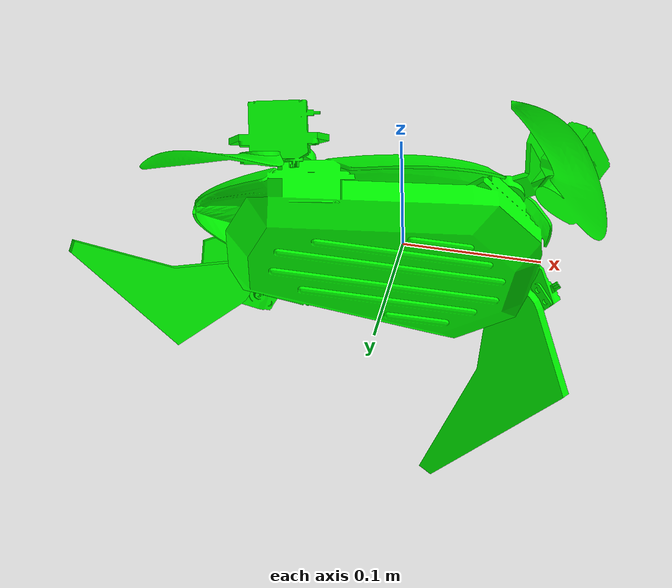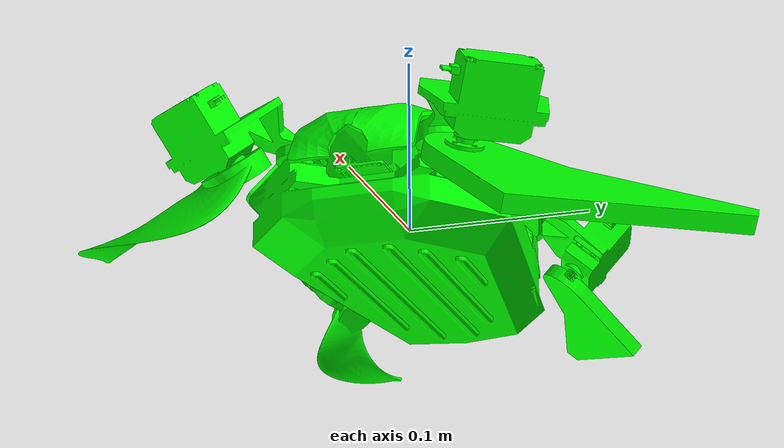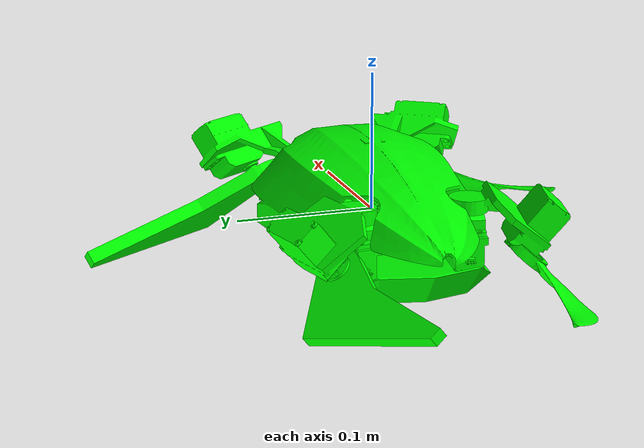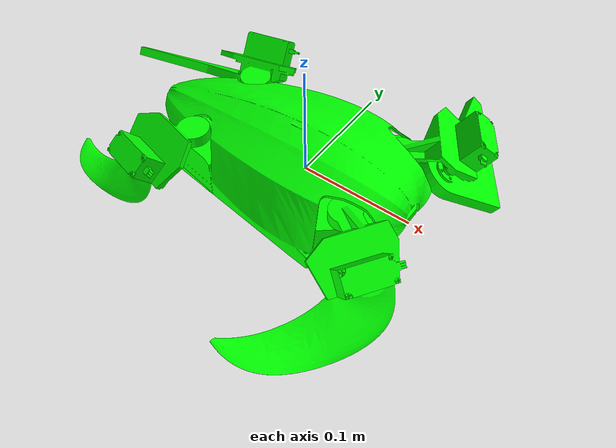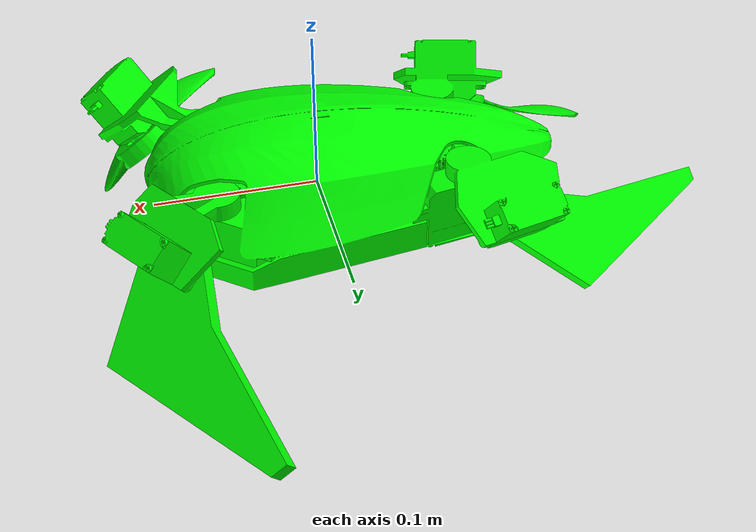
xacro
<?xml version="1.0"?>
<!-- Turtle on land URDF file-->
<robot name="URDF1" xmlns:xacro="http://www.ros.org/wiki/xacro">

  <!-- Import turtlebot ros2_control description -->
  <xacro:include filename="$(find turtle_on_land_demo)/src/ros2_control.xacro" />

  <!-- Import turtle gazebo lidar description -->
  <xacro:include filename="$(find turtle_on_land_demo)/gazebo/turtle.gazebo.xacro" />

  <!--Link1; Turtle Shell bottom-->
  <link name="base_footprint">
  <!--Visual description of link-->
      <visual>
      <!--Description of origin rotational and position coordinates -->
          <origin xyz="0 0 0" rpy="0 0 0" />
          <geometry>
          <!--Modeled as a box of dimensions; Length, width, height-->
            <box size="0.001 0.001 0.001" />
          </geometry>
      </visual>
  </link>
  <!--Link parameteres are repeated for each link-->

  <!--Joint1; fixed joint between Link1 and 2 -->
  <!--Describes movement of the joint in relation to the two links , fixed, revolute and rotational -->
  <joint name="base_footprint_joint" type="fixed">
  <!--Description of joint origin rotational and position coordinates-->
      <origin xyz="0 0 0.001" rpy="0 0 0" />
      <!--Parent link defining parent frame-->
      <parent link="base_footprint"/>
      <!--Child link defining child frame-->
      <child link="base_link" />
      <dynamics damping="0.1" friction="0.01"/>
  </joint>
  <!--Joint parameters are the same throughout for each link connection-->

  <!--Link2;Turtle Shell Top-->
  <link
    name="base_link">
    <!--Interial properties-->
    <inertial>
      <origin
        xyz="-0.0076873 -3.8825E-05 -0.0022692"
        rpy="0 0 0" />
        <!--Mass parameter for link-->
      <mass
        value="10.97301" />
        <!--Inertial properties-->
      <inertia
        ixx="0.00031924"
        ixy="2.9938E-07"
        ixz="-1.8594E-05"
        iyy="0.00078244"
        iyz="4.8628E-08"
        izz="0.0010267" />
    </inertial>
    <!--Origin description-->
    <visual>
      <origin
        xyz="0 0 0"
        rpy="0 0 0" />
        <!--Filepath to STL visual Mesh file-->
      <geometry>
        <mesh filename="package://turtle_on_land_demo/meshes/visual/base_link.STL"/>
      </geometry>
      <material
        name="">
        <!--Link Color-->
        <color
          rgba="0 1 0 1" />
      </material>
    </visual>
    <!--Collision parameter for Link-->
    <collision>
      <origin
        xyz="0 0 0"
        rpy="0 0 0" />
        <!--Filepath to STL visual Mesh file-->
      <geometry>
        <mesh
          filename="package://turtle_on_land_demo/meshes/visual/base_link.STL" />
      </geometry>
    </collision>
  </link>

  <!--Link3; Front right shoulder-->
  <link
    name="Front_right1">
    <!--Interial properties of Link3-->
    <inertial>
      <origin
        xyz="0.0080805 0.044922 -0.0032131"
        rpy="0 0 0" />
        <!--Mass Parameter of Link3-->
      <mass
        value="0.047842" />
      <inertia
        ixx="1.0755E-05"
        ixy="-1.0673E-06"
        ixz="-7.773E-08"
        iyy="1.1517E-05"
        iyz="-1.8519E-06"
        izz="1.5396E-05" />
    </inertial>
    <visual>
      <origin
        xyz="0 0 0"
        rpy="0 0 0" />
      <geometry>
        <mesh
          filename="package://turtle_on_land_demo/meshes/visual/Front_right1.STL" />
      </geometry>
      <material
        name="">
        <color
          rgba="0 1 0 1" />
      </material>
    </visual>
    <collision>
      <origin
        xyz="0 0 0"
        rpy="0 0 0" />
      <geometry>
        <mesh
          filename="package://turtle_on_land_demo/meshes/visual/Front_right1.STL" />
      </geometry>
    </collision>
  </link>

  <!--Joint2;Revolute joint between base link and link3-->
  <joint
    name="Front_right1_joint"
    type="revolute">
    <origin
      xyz="0.065905 -0.038461 0.029"
      rpy="0 0 -2.1584" />
    <parent
      link="base_link" />
    <child
      link="Front_right1" />
    <axis
      xyz="0 0 -1" />
    <limit
      lower="-0.7854"
      upper="0.7854"
      effort="20"
      velocity="999" />
    <dynamics damping="0.1" friction="0.1"/>
  </joint>

  <!--Link4; Froint right flipper-->
  <link
    name="Front_right2">
    <inertial>
      <origin
        xyz="-0.018453 -0.024053 -0.0074149"
        rpy="0 0 0" />
      <mass
        value="0.028365" />
      <inertia
        ixx="1.015E-05"
        ixy="-7.9763E-06"
        ixz="2.5126E-07"
        iyy="2.3351E-05"
        iyz="-4.6909E-07"
        izz="3.2871E-05" />
    </inertial>
    <visual>
      <origin
        xyz="0 0 0"
        rpy="0 0 0" />
      <geometry>
        <mesh
          filename="package://turtle_on_land_demo/meshes/visual/Front_right2.STL" />
      </geometry>
      <material
        name="">
        <color
          rgba="0 1 0 1" />
      </material>
    </visual>
    <collision>
      <origin
        xyz="0 0 0"
        rpy="0 0 0" />
      <geometry>
        <mesh
          filename="package://turtle_on_land_demo/meshes/visual/Front_right2.STL" />
      </geometry>
    </collision>
  </link>

  <!--Joint3; revolute joint between Link3 and 4-->
  <joint
    name="Front_right2_joint"
    type="revolute">
    <origin
      xyz="0 0.042057 -0.020374"
      rpy="0.69813 0 3.1416" />
    <parent
      link="Front_right1" />
    <child
      link="Front_right2" />
    <axis
      xyz="0 0 1" />
    <limit
      lower="-0.785398"
      upper="0.223599"
      effort="20"
      velocity="999" />
    <dynamics damping="0.1" friction="0.1"/>
  </joint>

  <!--Link5; Back right shoulder-->
  <link
    name="Back_right1">
    <inertial>
      <origin
        xyz="-0.0087137 -0.036127 -0.013053"
        rpy="0 0 0" />
      <mass
        value="0.0471" />
      <inertia
        ixx="8.9392E-06"
        ixy="-8.3018E-07"
        ixz="-1.3278E-07"
        iyy="1.2231E-05"
        iyz="7.4504E-07"
        izz="1.4131E-05" />
    </inertial>
    <visual>
      <origin
        xyz="0 0 0"
        rpy="0 0 0" />
      <geometry>
        <mesh
          filename="package://turtle_on_land_demo/meshes/visual/Back_right1.STL" />
      </geometry>
      <material
        name="">
        <color
          rgba="0 1 0 1" />
      </material>
    </visual>
    <collision>
      <origin
        xyz="0 0 0"
        rpy="0 0 0" />
      <geometry>
        <mesh
          filename="package://turtle_on_land_demo/meshes/visual/Back_right1.STL" />
      </geometry>
    </collision>
  </link>

  <!--Joint4; revolute joint between base Link and Link5-->
  <joint
    name="Back_right1_joint"
    type="revolute">
    <origin
      xyz="-0.083768 -0.040084 0.029"
      rpy="0 0 -0.24199" />
    <parent
      link="base_link" />
    <child
      link="Back_right1" />
    <axis
      xyz="0 0 -1" />
    <limit
      lower="-0.7854"
      upper="0.7854"
      effort="10"
      velocity="999" />
    <dynamics damping="0.1" friction="0.1"/>
  </joint>

  <!--Link6; Back right flipper-->
  <link
    name="Back_right2">
    <inertial>
      <origin
        xyz="-0.013023 -0.015316 -0.0052397"
        rpy="0 0 0" />
      <mass
        value="0.0099911" />
      <inertia
        ixx="1.8331E-06"
        ixy="-1.3351E-06"
        ixz="5.2365E-08"
        iyy="4.0494E-06"
        iyz="-7.3412E-08"
        izz="5.7801E-06" />
    </inertial>
    <visual>
      <origin
        xyz="0 0 0"
        rpy="0 0 0" />
      <geometry>
        <mesh
          filename="package://turtle_on_land_demo/meshes/visual/Back_right2.STL" />
      </geometry>
      <material
        name="">
        <color
          rgba="0 1 0 1" />
      </material>
    </visual>
    <collision>
      <origin
        xyz="0 0 0"
        rpy="0 0 0" />
      <geometry>
        <mesh
          filename="package://turtle_on_land_demo/meshes/visual/Back_right2.STL" />
      </geometry>
    </collision>
  </link>

  <!--Joint5; revolute joint between Link 5 and 6-->
  <joint
    name="Back_right2_joint"
    type="revolute">
    <origin
      xyz="0 -0.030582 -0.032411"
      rpy="0.69813 0 0" />
    <parent
      link="Back_right1" />
    <child
      link="Back_right2" />
    <axis
      xyz="0 0 1" />
    <limit
      lower="-0.785398"
      upper="0.223599"
      effort="10"
      velocity="999" />
    <dynamics damping="0.1" friction="0.1"/>
  </joint>

  <!--Link7; Front left shoulder-->
  <link
    name="Front_left1">
    <inertial>
      <origin
        xyz="0.0080805 -0.044921 -0.0032127"
        rpy="0 0 0" />
      <mass
        value="0.047842" />
      <inertia
        ixx="1.0755E-05"
        ixy="1.0675E-06"
        ixz="-7.7552E-08"
        iyy="1.1516E-05"
        iyz="1.852E-06"
        izz="1.5397E-05" />
    </inertial>
    <visual>
      <origin
        xyz="0 0 0"
        rpy="0 0 0" />
      <geometry>
        <mesh
          filename="package://turtle_on_land_demo/meshes/visual/Front_left1.STL" />
      </geometry>
      <material
        name="">
        <color
          rgba="0 1 0 1" />
      </material>
    </visual>
    <collision>
      <origin
        xyz="0 0 0"
        rpy="0 0 0" />
      <geometry>
        <mesh
          filename="package://turtle_on_land_demo/meshes/visual/Front_left1.STL" />
      </geometry>
    </collision>
  </link>

  <!--Joint6; revolute joint between base link and link 7-->
  <joint
    name="Front_left1_joint"
    type="revolute">
    <origin
      xyz="0.065905 0.038461 0.029"
      rpy="0 0 2.1584" />
    <parent
      link="base_link" />
    <child
      link="Front_left1" />
    <axis
      xyz="0 0 -1" />
    <limit
      lower="-0.6854"
      upper="0.6854"
      effort="20"
      velocity="999" />
    <dynamics damping="0.1" friction="0.1"/>
  </joint>

  <!--Link8; Front left flipper-->
  <link
    name="Front_left2">
    <inertial>
      <origin
        xyz="0.018449 -0.024055 -0.0074161"
        rpy="0 0 0" />
      <mass
        value="0.028369" />
      <inertia
        ixx="1.0151E-05"
        ixy="7.9738E-06"
        ixz="-2.5212E-07"
        iyy="2.3348E-05"
        iyz="-4.6947E-07"
        izz="3.2868E-05" />
    </inertial>
    <visual>
      <origin
        xyz="0 0 0"
        rpy="0 0 0" />
      <geometry>
        <mesh
          filename="package://turtle_on_land_demo/meshes/visual/Front_left2.STL" />
      </geometry>
      <material
        name="">
        <color
          rgba="0 1 0 1" />
      </material>
    </visual>
    <collision>
      <origin
        xyz="0 0 0"
        rpy="0 0 0" />
      <geometry>
        <mesh
          filename="package://turtle_on_land_demo/meshes/visual/Front_left2.STL" />
      </geometry>
    </collision>
  </link>

  <!--Joint7; revolute joint between Link 7 and 8-->
  <joint
    name="Front_left2_joint"
    type="revolute">
    <origin
      xyz="0 -0.042057 -0.020374"
      rpy="0.69813 0 0" />
    <parent
      link="Front_left1" />
    <child
      link="Front_left2" />
    <axis
      xyz="0 0 1" />
    <limit
      lower="-0.223599"
      upper="0.785398"
      effort="20"
      velocity="999" />
    <dynamics damping="0.1" friction="0.1"/>
  </joint>

  <!--Link9; Back left shoulder-->
  <link
    name="Back_left1">
    <inertial>
      <origin
        xyz="-0.0087137 0.036126 -0.013052"
        rpy="0 0 0" />
      <mass
        value="0.0471" />
      <inertia
        ixx="8.9392E-06"
        ixy="8.304E-07"
        ixz="-1.3296E-07"
        iyy="1.223E-05"
        iyz="-7.4516E-07"
        izz="1.4132E-05" />
    </inertial>
    <visual>
      <origin
        xyz="0 0 0"
        rpy="0 0 0" />
      <geometry>
        <mesh
          filename="package://turtle_on_land_demo/meshes/visual/Back_left1.STL" />
      </geometry>
      <material
        name="">
        <color
          rgba="0 1 0 1" />
      </material>
    </visual>
    <collision>
      <origin
        xyz="0 0 0"
        rpy="0 0 0" />
      <geometry>
        <mesh
          filename="package://turtle_on_land_demo/meshes/visual/Back_left1.STL" />
      </geometry>
    </collision>
  </link>

  <!--Joint8 revolute joint between base link and link 9-->
  <joint
    name="Back_left1_joint"
    type="revolute">
    <origin
      xyz="-0.083768 0.040084 0.029"
      rpy="0 0 0.24199" />
    <parent
      link="base_link" />
    <child
      link="Back_left1" />
    <axis
      xyz="0 0 -1" />
    <limit
      lower="-0.7854"
      upper="0.7854"
      effort="10"
      velocity="999" />
    <dynamics damping="0.1" friction="0.1"/>
  </joint>

  <!--Link10;Back left flipper-->
  <link
    name="Back_left2">
    <inertial>
      <origin
        xyz="0.010585 0.017092 -0.0052398"
        rpy="0 0 0" />
      <mass
        value="0.0099917" />
      <inertia
        ixx="4.6202E-06"
        ixy="-4.3699E-07"
        ixz="8.5959E-08"
        iyy="1.2622E-06"
        iyz="-2.7328E-08"
        izz="5.78E-06" />
    </inertial>
    <visual>
      <origin
        xyz="0 0 0"
        rpy="0 0 0" />
      <geometry>
        <mesh
          filename="package://turtle_on_land_demo/meshes/visual/Back_left2.STL" />
      </geometry>
      <material
        name="">
        <color
          rgba="0 1 0 1" />
      </material>
    </visual>
    <collision>
      <origin
        xyz="0 0 0"
        rpy="0 0 0" />
      <geometry>
        <mesh
          filename="package://turtle_on_land_demo/meshes/visual/Back_left2.STL" />
      </geometry>
    </collision>
  </link>

  <!--Joint9; revolute joint betwen Link 9 and 10-->
  <joint
    name="Back_left2_joint"
    type="revolute">
    <origin
      xyz="0 0.030582 -0.032411"
      rpy="-0.25187 0.65835 1.1726" />
    <parent
      link="Back_left1" />
    <child
      link="Back_left2" />
    <axis
      xyz="0 0 1" />
    <limit
      lower="-0.223599"
      upper="0.785398"
      effort="10"
      velocity="999" />
    <dynamics damping="0.1" friction="0.1"/>
  </joint>

  <link
    name="Sensor_link">
    <inertial>
      <origin
        xyz="-2.25214372452731E-05 0.103607028948444 -0.00174327710854269"
        rpy="0 0 0" />
      <mass
        value="0.656382274118652" />
      <inertia
        ixx="0.00398589796619268"
        ixy="6.81523498247126E-07"
        ixz="7.5942173311683E-08"
        iyy="0.00261594481266056"
        iyz="4.49451871288875E-05"
        izz="0.00597901119561345" />
    </inertial>

  </link>

  <joint
    name="sensor"
    type="fixed">
    <origin
      xyz="0.0975 0 0.005"
      rpy="0 0 0" />
    <parent
      link="base_link" />
    <child
      link="Sensor_link" />
    <axis
      xyz="0 0 0" />
  </joint>

  <!--Camera Link-->
  <link
    name="Camera_link">
    <inertial>
      <origin
        xyz="-2.25214372452731E-05 0.103607028948444 -0.00174327710854269"
        rpy="0 0 0" />
      <mass
        value="0.656382274118652" />
      <inertia
        ixx="0.00398589796619268"
        ixy="6.81523498247126E-07"
        ixz="7.5942173311683E-08"
        iyy="0.00261594481266056"
        iyz="4.49451871288875E-05"
        izz="0.00597901119561345" />
    </inertial>

  </link>
  <!--Camera_Joint-->
   <joint
    name="camera"
    type="fixed">
    <origin
      xyz="0.0975 0 0.005"
      rpy="0 0 0" />
    <parent
      link="base_link" />
    <child
      link="Camera_link" />
    <axis
      xyz="0 0 0" />
  </joint>

</robot>
